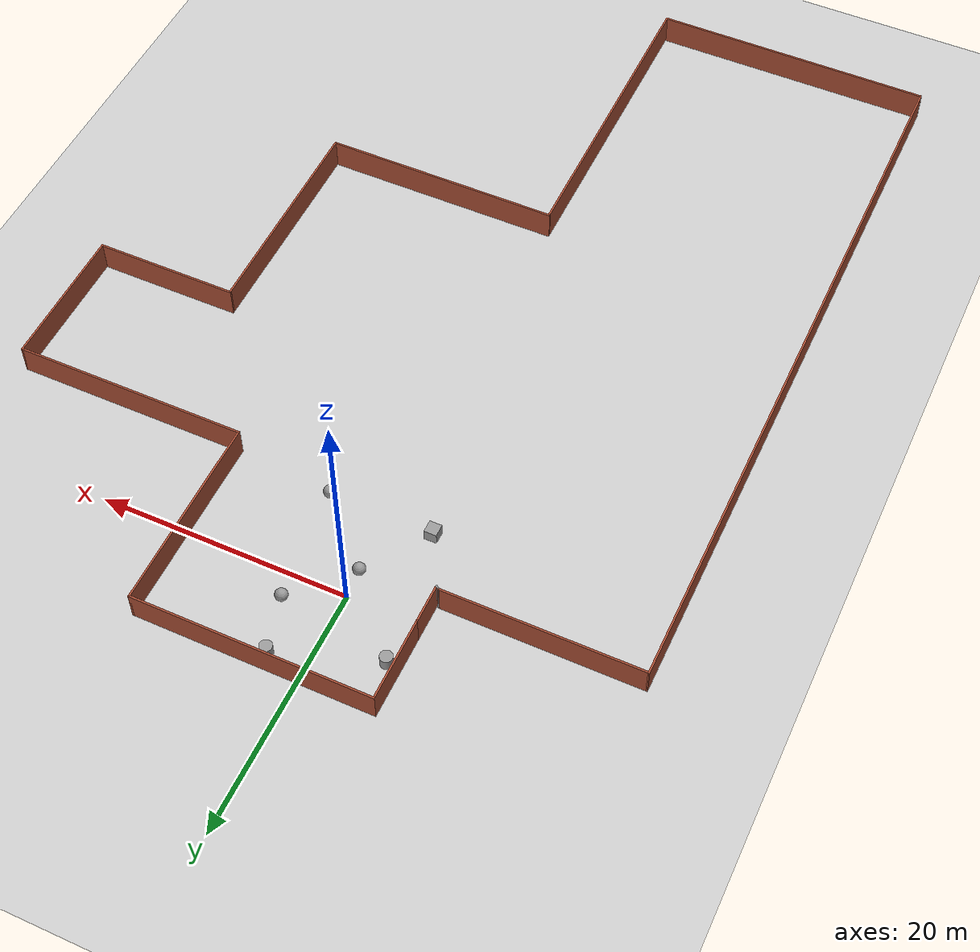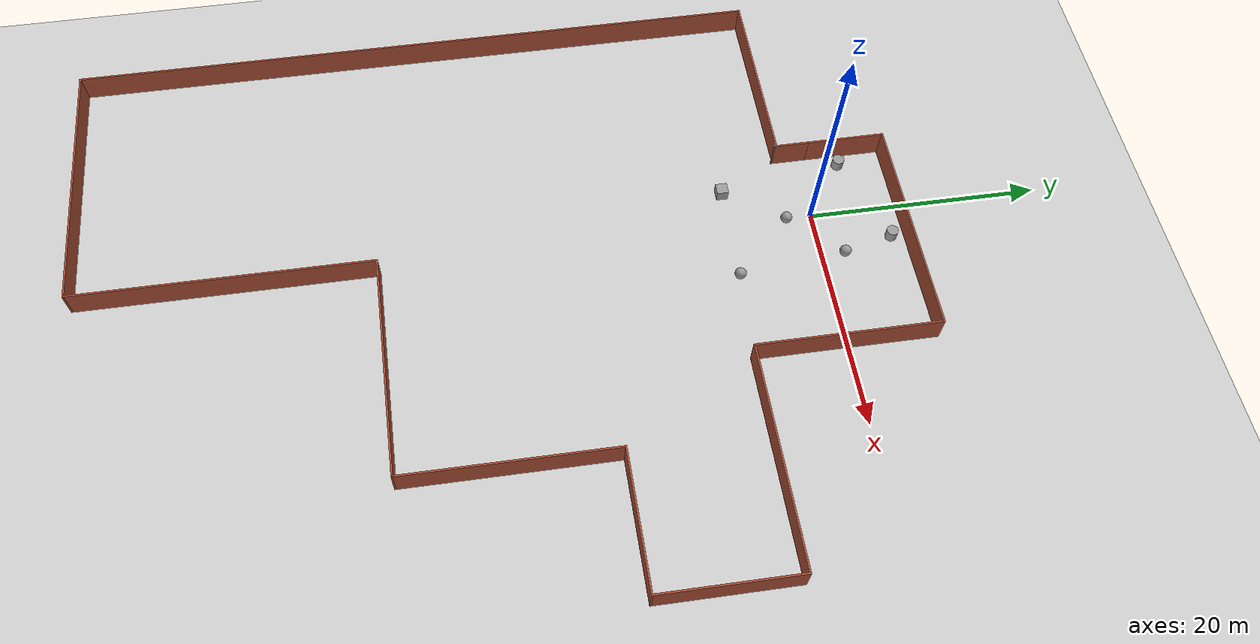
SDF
<sdf version="1.7">
 <world name="default">
  <light name="sun" type="directional">
   <pose>0 0 10 0 -0 0</pose>
   <diffuse>0.8 0.8 0.8 1</diffuse>
   <specular>0.2 0.2 0.2 1</specular>
   <attenuation>
    <range>1000</range>
    <constant>0.9</constant>
    <linear>0.01</linear>
    <quadratic>0.001</quadratic>
   </attenuation>
   <direction>-0.5 0.1 -0.9</direction>
   <spot><inner_angle>0</inner_angle><outer_angle>0</outer_angle><falloff>0</falloff></spot>
  </light>
  <model name="ground_plane">
   <static>1</static>
   <link name="link">
    <collision name="collision">
     <geometry><plane><normal>0 0 1</normal><size>100 100</size></plane></geometry>
     <surface>
      <contact><collide_bitmask>65535</collide_bitmask></contact>
      <friction><ode><mu>100</mu><mu2>50</mu2></ode></friction>
     </surface>
    </collision>
    <visual name="visual">
     <cast_shadows>0</cast_shadows>
     <geometry><plane><normal>0 0 1</normal><size>100 100</size></plane></geometry>
     <material>
      <script><uri>file://media/materials/scripts/gazebo.material</uri><name>Gazebo/Grey</name></script>
     </material>
    </visual>
   </link>
  </model>
  <gravity>0 0 -9.8</gravity>
  <magnetic_field>6e-06 2.3e-05 -4.2e-05</magnetic_field>
  <atmosphere type="adiabatic"/>
  <physics type="ode">
   <max_step_size>0.001</max_step_size>
   <real_time_factor>1</real_time_factor>
   <real_time_update_rate>1000</real_time_update_rate>
  </physics>
  <scene><ambient>0.4 0.4 0.4 1</ambient><background>0.7 0.7 0.7 1</background><shadows>1</shadows></scene>
  <audio><device>default</device></audio>
  <spherical_coordinates>
   <surface_model>EARTH_WGS84</surface_model>
   <latitude_deg>0</latitude_deg>
   <longitude_deg>0</longitude_deg>
   <elevation>0</elevation>
   <heading_deg>0</heading_deg>
  </spherical_coordinates>
  <model name="my_env">
   <pose>4.85101 -27.7829 0 0 -0 0</pose>
   <link name="Wall_1">
    <collision name="Wall_1_Collision">
     <geometry><box><size>3.25 0.15 2.5</size></box></geometry>
     <pose>0 0 1.25 0 -0 0</pose>
    </collision>
    <visual name="Wall_1_Visual">
     <pose>0 0 1.25 0 -0 0</pose>
     <geometry><box><size>3.25 0.15 2.5</size></box></geometry>
     <material>
      <script><uri>file://media/materials/scripts/gazebo.material</uri><name>Gazebo/Bricks</name></script>
      <ambient>1 1 1 1</ambient>
     </material>
     <meta><layer>0</layer></meta>
    </visual>
    <pose>-10.925 27.175 0 0 -0 1.5708</pose>
   </link>
   <link name="Wall_10">
    <collision name="Wall_10_Collision">
     <geometry><box><size>25.75 0.15 2.5</size></box></geometry>
     <pose>0 0 1.25 0 -0 0</pose>
    </collision>
    <visual name="Wall_10_Visual">
     <pose>0 0 1.25 0 -0 0</pose>
     <geometry><box><size>25.75 0.15 2.5</size></box></geometry>
     <material>
      <script><uri>file://media/materials/scripts/gazebo.material</uri><name>Gazebo/Bricks</name></script>
      <ambient>1 1 1 1</ambient>
     </material>
     <meta><layer>0</layer></meta>
    </visual>
    <pose>-3.925 -22.525 0 0 -0 -1.5708</pose>
   </link>
   <link name="Wall_11">
    <collision name="Wall_11_Collision">
     <geometry><box><size>23.25 0.15 2.5</size></box></geometry>
     <pose>0 0 1.25 0 -0 0</pose>
    </collision>
    <visual name="Wall_11_Visual">
     <pose>0 0 1.25 0 -0 0</pose>
     <geometry><box><size>23.25 0.15 2.5</size></box></geometry>
     <material>
      <script><uri>file://media/materials/scripts/gazebo.material</uri><name>Gazebo/Bricks</name></script>
      <ambient>1 1 1 1</ambient>
     </material>
     <meta><layer>0</layer></meta>
    </visual>
    <pose>-15.475 -35.325 0 0 -0 3.14159</pose>
   </link>
   <link name="Wall_12">
    <collision name="Wall_12_Collision">
     <geometry><box><size>61.25 0.15 2.5</size></box></geometry>
     <pose>0 0 1.25 0 -0 0</pose>
    </collision>
    <visual name="Wall_12_Visual">
     <pose>0 0 1.25 0 -0 0</pose>
     <geometry><box><size>61.25 0.15 2.5</size></box></geometry>
     <material>
      <script><uri>file://media/materials/scripts/gazebo.material</uri><name>Gazebo/Bricks</name></script>
      <ambient>1 1 1 1</ambient>
     </material>
     <meta><layer>0</layer></meta>
    </visual>
    <pose>-27.025 -4.775 0 0 -0 1.5708</pose>
   </link>
   <link name="Wall_13">
    <collision name="Wall_13_Collision">
     <geometry><box><size>16 0.15 2.5</size></box></geometry>
     <pose>0 0 1.25 0 -0 0</pose>
    </collision>
    <visual name="Wall_13_Visual">
     <pose>0 0 1.25 0 -0 0</pose>
     <geometry><box><size>16 0.15 2.5</size></box></geometry>
     <material>
      <script><uri>file://media/materials/scripts/gazebo.material</uri><name>Gazebo/Bricks</name></script>
      <ambient>1 1 1 1</ambient>
     </material>
     <meta><layer>0</layer></meta>
    </visual>
    <pose>-19.1 25.775 0 0 -0 0</pose>
   </link>
   <link name="Wall_15">
    <collision name="Wall_15_Collision">
     <geometry><box><size>0.441548 0.15 2.5</size></box></geometry>
     <pose>0 0 1.25 0 -0 0</pose>
    </collision>
    <visual name="Wall_15_Visual">
     <pose>0 0 1.25 0 -0 0</pose>
     <geometry><box><size>0.441548 0.15 2.5</size></box></geometry>
     <material>
      <script><uri>file://media/materials/scripts/gazebo.material</uri><name>Gazebo/Grey</name></script>
      <ambient>1 1 1 1</ambient>
     </material>
     <meta><layer>0</layer></meta>
    </visual>
    <pose>-11.05 25.7 0 0 -0 -0.54042</pose>
   </link>
   <link name="Wall_2">
    <collision name="Wall_2_Collision">
     <geometry><box><size>6.75 0.15 2.5</size></box></geometry>
     <pose>0 0 1.25 0 -0 0</pose>
    </collision>
    <visual name="Wall_2_Visual">
     <pose>0 0 1.25 0 -0 0</pose>
     <geometry><box><size>6.75 0.15 2.5</size></box></geometry>
     <material>
      <script><uri>file://media/materials/scripts/gazebo.material</uri><name>Gazebo/Bricks</name></script>
      <ambient>1 1 1 1</ambient>
     </material>
     <meta><layer>0</layer></meta>
    </visual>
    <pose>-10.925 32.025 0 0 -0 1.5708</pose>
   </link>
   <link name="Wall_3">
    <collision name="Wall_3_Collision">
     <geometry><box><size>19.25 0.15 2.5</size></box></geometry>
     <pose>0 0 1.25 0 -0 0</pose>
    </collision>
    <visual name="Wall_3_Visual">
     <pose>0 0 1.25 0 -0 0</pose>
     <geometry><box><size>19.25 0.15 2.5</size></box></geometry>
     <material>
      <script><uri>file://media/materials/scripts/gazebo.material</uri><name>Gazebo/Bricks</name></script>
      <ambient>1 1 1 1</ambient>
     </material>
     <meta><layer>0</layer></meta>
    </visual>
    <pose>-1.375 35.325 0 0 -0 0</pose>
   </link>
   <link name="Wall_4">
    <collision name="Wall_4_Collision">
     <geometry><box><size>15.75 0.15 2.5</size></box></geometry>
     <pose>0 0 1.25 0 -0 0</pose>
    </collision>
    <visual name="Wall_4_Visual">
     <pose>0 0 1.25 0 -0 0</pose>
     <geometry><box><size>15.75 0.15 2.5</size></box></geometry>
     <material>
      <script><uri>file://media/materials/scripts/gazebo.material</uri><name>Gazebo/Bricks</name></script>
      <ambient>1 1 1 1</ambient>
     </material>
     <meta><layer>0</layer></meta>
    </visual>
    <pose>8.175 27.525 0 0 -0 -1.5708</pose>
   </link>
   <link name="Wall_5">
    <collision name="Wall_5_Collision">
     <geometry><box><size>19 0.15 2.5</size></box></geometry>
     <pose>0 0 1.25 0 -0 0</pose>
    </collision>
    <visual name="Wall_5_Visual">
     <pose>0 0 1.25 0 -0 0</pose>
     <geometry><box><size>19 0.15 2.5</size></box></geometry>
     <material>
      <script><uri>file://media/materials/scripts/gazebo.material</uri><name>Gazebo/Bricks</name></script>
      <ambient>1 1 1 1</ambient>
     </material>
     <meta><layer>0</layer></meta>
    </visual>
    <pose>17.6 19.725 0 0 -0 0</pose>
   </link>
   <link name="Wall_6">
    <collision name="Wall_6_Collision">
     <geometry><box><size>11.75 0.15 2.5</size></box></geometry>
     <pose>0 0 1.25 0 -0 0</pose>
    </collision>
    <visual name="Wall_6_Visual">
     <pose>0 0 1.25 0 -0 0</pose>
     <geometry><box><size>11.75 0.15 2.5</size></box></geometry>
     <material>
      <script><uri>file://media/materials/scripts/gazebo.material</uri><name>Gazebo/Bricks</name></script>
      <ambient>1 1 1 1</ambient>
     </material>
     <meta><layer>0</layer></meta>
    </visual>
    <pose>27.025 13.925 0 0 -0 -1.5708</pose>
   </link>
   <link name="Wall_7">
    <collision name="Wall_7_Collision">
     <geometry><box><size>11.75 0.15 2.5</size></box></geometry>
     <pose>0 0 1.25 0 -0 0</pose>
    </collision>
    <visual name="Wall_7_Visual">
     <pose>0 0 1.25 0 -0 0</pose>
     <geometry><box><size>11.75 0.15 2.5</size></box></geometry>
     <material>
      <script><uri>file://media/materials/scripts/gazebo.material</uri><name>Gazebo/Bricks</name></script>
      <ambient>1 1 1 1</ambient>
     </material>
     <meta><layer>0</layer></meta>
    </visual>
    <pose>21.225 8.125 0 0 -0 3.14159</pose>
   </link>
   <link name="Wall_8">
    <collision name="Wall_8_Collision">
     <geometry><box><size>18 0.15 2.5</size></box></geometry>
     <pose>0 0 1.25 0 -0 0</pose>
    </collision>
    <visual name="Wall_8_Visual">
     <pose>0 0 1.25 0 -0 0</pose>
     <geometry><box><size>18 0.15 2.5</size></box></geometry>
     <material>
      <script><uri>file://media/materials/scripts/gazebo.material</uri><name>Gazebo/Bricks</name></script>
      <ambient>1 1 1 1</ambient>
     </material>
     <meta><layer>0</layer></meta>
    </visual>
    <pose>15.425 -0.799997 0 0 -0 -1.5708</pose>
   </link>
   <link name="Wall_9">
    <collision name="Wall_9_Collision">
     <geometry><box><size>19.5 0.15 2.5</size></box></geometry>
     <pose>0 0 1.25 0 -0 0</pose>
    </collision>
    <visual name="Wall_9_Visual">
     <pose>0 0 1.25 0 -0 0</pose>
     <geometry><box><size>19.5 0.15 2.5</size></box></geometry>
     <material>
      <script><uri>file://media/materials/scripts/gazebo.material</uri><name>Gazebo/Bricks</name></script>
      <ambient>1 1 1 1</ambient>
     </material>
     <meta><layer>0</layer></meta>
    </visual>
    <pose>5.75 -9.725 0 0 -0 3.14159</pose>
   </link>
   <static>1</static>
  </model>
  <model name="unit_box">
   <pose>-3.28601 -7.29009 0.499995 -1e-05 -0 -0</pose>
   <link name="link">
    <inertial>
     <mass>1</mass>
     <inertia>
      <ixx>0.166667</ixx>
      <ixy>0</ixy>
      <ixz>0</ixz>
      <iyy>0.166667</iyy>
      <iyz>0</iyz>
      <izz>0.166667</izz>
     </inertia>
    </inertial>
    <collision name="collision"><geometry><box><size>1 1 1</size></box></geometry></collision>
    <visual name="visual">
     <geometry><box><size>1 1 1</size></box></geometry>
     <material>
      <script><name>Gazebo/Grey</name><uri>file://media/materials/scripts/gazebo.material</uri></script>
     </material>
    </visual>
   </link>
  </model>
  <model name="unit_sphere">
   <pose>5.18072 -7.33993 0.5 0 -0 0</pose>
   <link name="link">
    <inertial>
     <mass>1</mass>
     <inertia><ixx>0.1</ixx><ixy>0</ixy><ixz>0</ixz><iyy>0.1</iyy><iyz>0</iyz><izz>0.1</izz></inertia>
    </inertial>
    <collision name="collision"><geometry><sphere><radius>0.5</radius></sphere></geometry></collision>
    <visual name="visual">
     <geometry><sphere><radius>0.5</radius></sphere></geometry>
     <material>
      <script><name>Gazebo/Grey</name><uri>file://media/materials/scripts/gazebo.material</uri></script>
     </material>
    </visual>
   </link>
  </model>
  <model name="unit_cylinder">
   <pose>3.0111 6.3439 0.499993 -3e-06 -4e-06 -0</pose>
   <link name="link">
    <inertial>
     <mass>1</mass>
     <inertia><ixx>0.145833</ixx><ixy>0</ixy><ixz>0</ixz><iyy>0.145833</iyy><iyz>0</iyz><izz>0.125</izz></inertia>
    </inertial>
    <collision name="collision">
     <geometry><cylinder><radius>0.5</radius><length>1</length></cylinder></geometry>
    </collision>
    <visual name="visual">
     <geometry><cylinder><radius>0.5</radius><length>1</length></cylinder></geometry>
     <material>
      <script><name>Gazebo/Grey</name><uri>file://media/materials/scripts/gazebo.material</uri></script>
     </material>
    </visual>
   </link>
  </model>
  <model name="unit_sphere_0">
   <pose>4.18446 1.98617 0.5 0 -0 0</pose>
   <link name="link">
    <inertial>
     <mass>1</mass>
     <inertia><ixx>0.1</ixx><ixy>0</ixy><ixz>0</ixz><iyy>0.1</iyy><iyz>0</iyz><izz>0.1</izz></inertia>
    </inertial>
    <collision name="collision"><geometry><sphere><radius>0.5</radius></sphere></geometry></collision>
    <visual name="visual">
     <geometry><sphere><radius>0.5</radius></sphere></geometry>
     <material>
      <script><name>Gazebo/Grey</name><uri>file://media/materials/scripts/gazebo.material</uri></script>
     </material>
    </visual>
   </link>
  </model>
  <model name="unit_cylinder_0">
   <pose>-4.95641 3.59114 0.499993 -3e-06 -4e-06 -0</pose>
   <link name="link">
    <inertial>
     <mass>1</mass>
     <inertia><ixx>0.145833</ixx><ixy>0</ixy><ixz>0</ixz><iyy>0.145833</iyy><iyz>0</iyz><izz>0.125</izz></inertia>
    </inertial>
    <collision name="collision">
     <geometry><cylinder><radius>0.5</radius><length>1</length></cylinder></geometry>
    </collision>
    <visual name="visual">
     <geometry><cylinder><radius>0.5</radius><length>1</length></cylinder></geometry>
     <material>
      <script><name>Gazebo/Grey</name><uri>file://media/materials/scripts/gazebo.material</uri></script>
     </material>
    </visual>
   </link>
  </model>
  <model name="unit_sphere_1">
   <pose>0.153921 -2.24872 0.5 0 -0 0</pose>
   <link name="link">
    <inertial>
     <mass>1</mass>
     <inertia><ixx>0.1</ixx><ixy>0</ixy><ixz>0</ixz><iyy>0.1</iyy><iyz>0</iyz><izz>0.1</izz></inertia>
    </inertial>
    <collision name="collision"><geometry><sphere><radius>0.5</radius></sphere></geometry></collision>
    <visual name="visual">
     <geometry><sphere><radius>0.5</radius></sphere></geometry>
     <material>
      <script><name>Gazebo/Grey</name><uri>file://media/materials/scripts/gazebo.material</uri></script>
     </material>
    </visual>
   </link>
  </model>
 </world>
</sdf>
